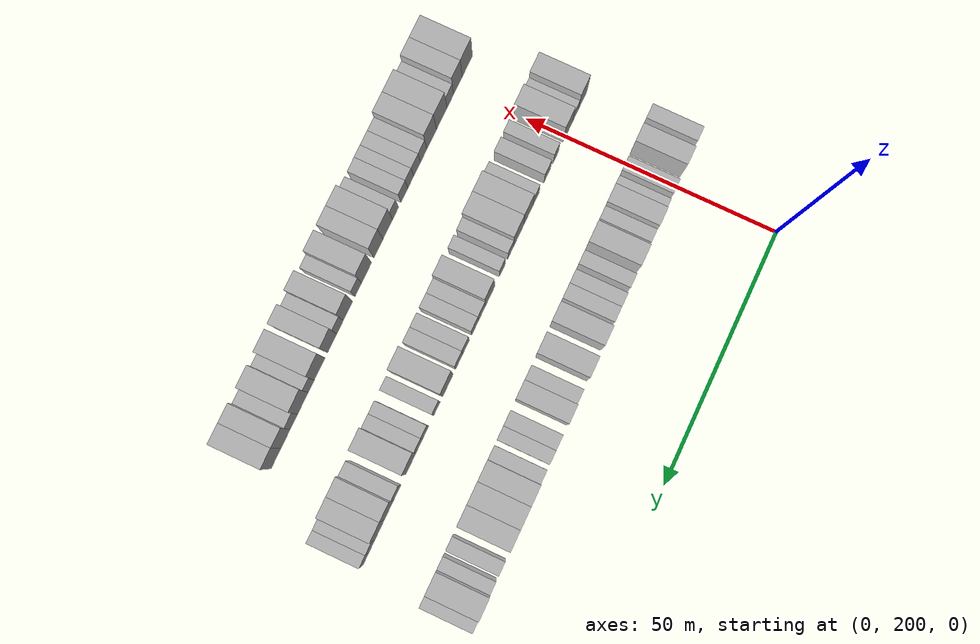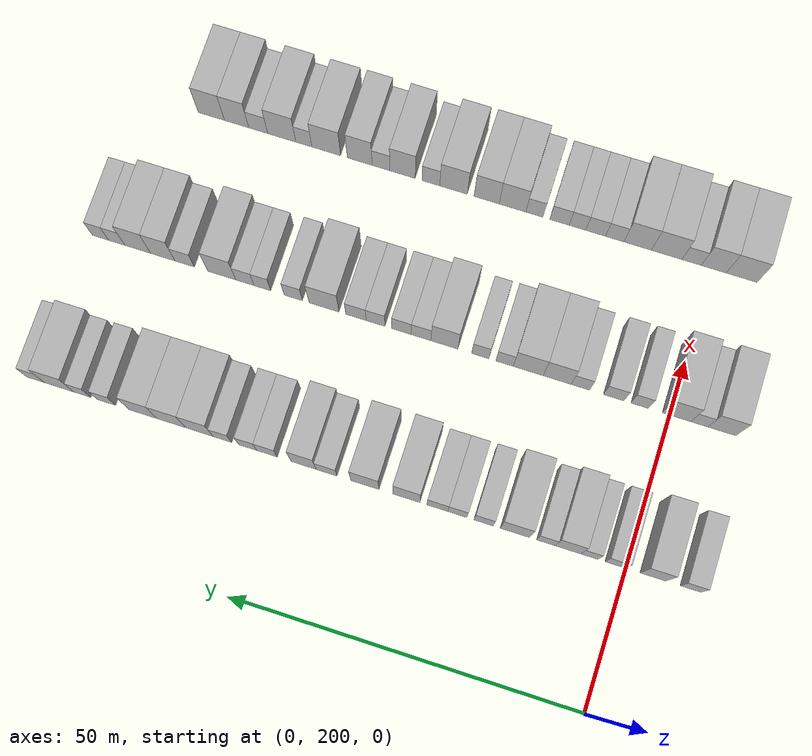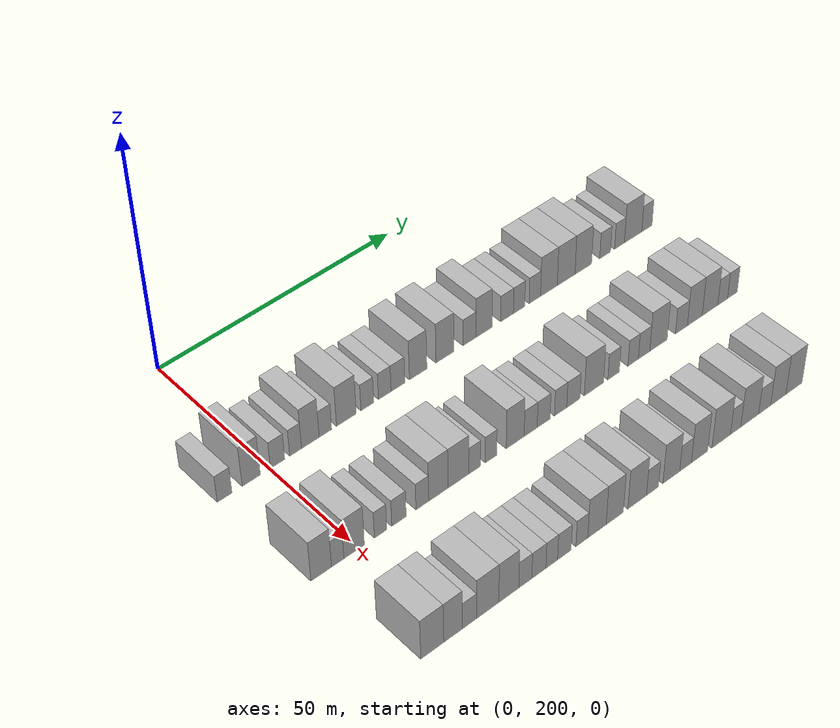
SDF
<sdf version="1.6">
 <world name="default">
  <model name="building_149">
   <static>1</static>
   <pose>25.0000 191.0385 0 0.000000 0.000000 0.000000</pose>
   <link name="link">
    <pose>0 0 3.00 0 0 0</pose>
    <collision name="collision"><geometry><box><size>10.0000 2.8879 6.0000</size></box></geometry></collision>
    <visual name="visual">
     <cast_shadows>0</cast_shadows>
     <geometry><box><size>10.0000 2.8879 6.0000</size></box></geometry>
     <material>
      <script>
       <uri>model://HANNAS_wall/materials/scripts</uri>
       <uri>model://HANNAS_wall/materials/textures</uri>
       <name>vrc/HANNAS_wall</name>
      </script>
     </material>
    </visual>
   </link>
  </model>
  <model name="building_150">
   <static>1</static>
   <pose>25.0000 196.2888 0 0.000000 0.000000 0.000000</pose>
   <link name="link">
    <pose>0 0 4.50 0 0 0</pose>
    <collision name="collision"><geometry><box><size>10.0000 3.6127 9.0000</size></box></geometry></collision>
    <visual name="visual">
     <cast_shadows>0</cast_shadows>
     <geometry><box><size>10.0000 3.6127 9.0000</size></box></geometry>
     <material>
      <script>
       <uri>model://HANNAS_wall/materials/scripts</uri>
       <uri>model://HANNAS_wall/materials/textures</uri>
       <name>vrc/HANNAS_wall</name>
      </script>
     </material>
    </visual>
   </link>
  </model>
  <model name="building_151">
   <static>1</static>
   <pose>25.0000 201.5452 0 0.000000 0.000000 0.000000</pose>
   <link name="link">
    <pose>0 0 3.00 0 0 0</pose>
    <collision name="collision"><geometry><box><size>10.0000 2.9001 6.0000</size></box></geometry></collision>
    <visual name="visual">
     <cast_shadows>0</cast_shadows>
     <geometry><box><size>10.0000 2.9001 6.0000</size></box></geometry>
     <material>
      <script>
       <uri>model://HANNAS_wall/materials/scripts</uri>
       <uri>model://HANNAS_wall/materials/textures</uri>
       <name>vrc/HANNAS_wall</name>
      </script>
     </material>
    </visual>
   </link>
  </model>
  <model name="building_152">
   <static>1</static>
   <pose>25.0000 205.2022 0 0.000000 0.000000 0.000000</pose>
   <link name="link">
    <pose>0 0 3.00 0 0 0</pose>
    <collision name="collision"><geometry><box><size>10.0000 2.4138 6.0000</size></box></geometry></collision>
    <visual name="visual">
     <cast_shadows>0</cast_shadows>
     <geometry><box><size>10.0000 2.4138 6.0000</size></box></geometry>
     <material>
      <script>
       <uri>model://HANNAS_wall/materials/scripts</uri>
       <uri>model://HANNAS_wall/materials/textures</uri>
       <name>vrc/HANNAS_wall</name>
      </script>
     </material>
    </visual>
   </link>
  </model>
  <model name="building_153">
   <static>1</static>
   <pose>25.0000 208.2257 0 0.000000 0.000000 0.000000</pose>
   <link name="link">
    <pose>0 0 4.50 0 0 0</pose>
    <collision name="collision"><geometry><box><size>10.0000 3.6332 9.0000</size></box></geometry></collision>
    <visual name="visual">
     <cast_shadows>0</cast_shadows>
     <geometry><box><size>10.0000 3.6332 9.0000</size></box></geometry>
     <material>
      <script>
       <uri>model://HANNAS_wall/materials/scripts</uri>
       <uri>model://HANNAS_wall/materials/textures</uri>
       <name>vrc/HANNAS_wall</name>
      </script>
     </material>
    </visual>
   </link>
  </model>
  <model name="building_154">
   <static>1</static>
   <pose>25.0000 211.3368 0 0.000000 0.000000 0.000000</pose>
   <link name="link">
    <pose>0 0 3.00 0 0 0</pose>
    <collision name="collision"><geometry><box><size>10.0000 2.5889 6.0000</size></box></geometry></collision>
    <visual name="visual">
     <cast_shadows>0</cast_shadows>
     <geometry><box><size>10.0000 2.5889 6.0000</size></box></geometry>
     <material>
      <script>
       <uri>model://HANNAS_wall/materials/scripts</uri>
       <uri>model://HANNAS_wall/materials/textures</uri>
       <name>vrc/HANNAS_wall</name>
      </script>
     </material>
    </visual>
   </link>
  </model>
  <model name="building_155">
   <static>1</static>
   <pose>25.0000 215.7041 0 0.000000 0.000000 0.000000</pose>
   <link name="link">
    <pose>0 0 4.50 0 0 0</pose>
    <collision name="collision"><geometry><box><size>10.0000 4.1457 9.0000</size></box></geometry></collision>
    <visual name="visual">
     <cast_shadows>0</cast_shadows>
     <geometry><box><size>10.0000 4.1457 9.0000</size></box></geometry>
     <material>
      <script>
       <uri>model://HANNAS_wall/materials/scripts</uri>
       <uri>model://HANNAS_wall/materials/textures</uri>
       <name>vrc/HANNAS_wall</name>
      </script>
     </material>
    </visual>
   </link>
  </model>
  <model name="building_156">
   <static>1</static>
   <pose>25.0000 220.1453 0 0.000000 0.000000 0.000000</pose>
   <link name="link">
    <pose>0 0 3.00 0 0 0</pose>
    <collision name="collision"><geometry><box><size>10.0000 2.7368 6.0000</size></box></geometry></collision>
    <visual name="visual">
     <cast_shadows>0</cast_shadows>
     <geometry><box><size>10.0000 2.7368 6.0000</size></box></geometry>
     <material>
      <script>
       <uri>model://HANNAS_wall/materials/scripts</uri>
       <uri>model://HANNAS_wall/materials/textures</uri>
       <name>vrc/HANNAS_wall</name>
      </script>
     </material>
    </visual>
   </link>
  </model>
  <model name="building_157">
   <static>1</static>
   <pose>25.0000 223.8660 0 0.000000 0.000000 0.000000</pose>
   <link name="link">
    <pose>0 0 3.00 0 0 0</pose>
    <collision name="collision"><geometry><box><size>10.0000 2.7046 6.0000</size></box></geometry></collision>
    <visual name="visual">
     <cast_shadows>0</cast_shadows>
     <geometry><box><size>10.0000 2.7046 6.0000</size></box></geometry>
     <material>
      <script>
       <uri>model://HANNAS_wall/materials/scripts</uri>
       <uri>model://HANNAS_wall/materials/textures</uri>
       <name>vrc/HANNAS_wall</name>
      </script>
     </material>
    </visual>
   </link>
  </model>
  <model name="building_158">
   <static>1</static>
   <pose>25.0000 226.7072 0 0.000000 0.000000 0.000000</pose>
   <link name="link">
    <pose>0 0 3.00 0 0 0</pose>
    <collision name="collision"><geometry><box><size>10.0000 2.9778 6.0000</size></box></geometry></collision>
    <visual name="visual">
     <cast_shadows>0</cast_shadows>
     <geometry><box><size>10.0000 2.9778 6.0000</size></box></geometry>
     <material>
      <script>
       <uri>model://HANNAS_wall/materials/scripts</uri>
       <uri>model://HANNAS_wall/materials/textures</uri>
       <name>vrc/HANNAS_wall</name>
      </script>
     </material>
    </visual>
   </link>
  </model>
  <model name="building_159">
   <static>1</static>
   <pose>25.0000 231.1160 0 0.000000 0.000000 0.000000</pose>
   <link name="link">
    <pose>0 0 4.50 0 0 0</pose>
    <collision name="collision"><geometry><box><size>10.0000 3.8397 9.0000</size></box></geometry></collision>
    <visual name="visual">
     <cast_shadows>0</cast_shadows>
     <geometry><box><size>10.0000 3.8397 9.0000</size></box></geometry>
     <material>
      <script>
       <uri>model://HANNAS_wall/materials/scripts</uri>
       <uri>model://HANNAS_wall/materials/textures</uri>
       <name>vrc/HANNAS_wall</name>
      </script>
     </material>
    </visual>
   </link>
  </model>
  <model name="building_160">
   <static>1</static>
   <pose>25.0000 237.0586 0 0.000000 0.000000 0.000000</pose>
   <link name="link">
    <pose>0 0 4.50 0 0 0</pose>
    <collision name="collision"><geometry><box><size>10.0000 4.0454 9.0000</size></box></geometry></collision>
    <visual name="visual">
     <cast_shadows>0</cast_shadows>
     <geometry><box><size>10.0000 4.0454 9.0000</size></box></geometry>
     <material>
      <script>
       <uri>model://HANNAS_wall/materials/scripts</uri>
       <uri>model://HANNAS_wall/materials/textures</uri>
       <name>vrc/HANNAS_wall</name>
      </script>
     </material>
    </visual>
   </link>
  </model>
  <model name="building_161">
   <static>1</static>
   <pose>25.0000 242.5773 0 0.000000 0.000000 0.000000</pose>
   <link name="link">
    <pose>0 0 3.00 0 0 0</pose>
    <collision name="collision"><geometry><box><size>10.0000 2.9920 6.0000</size></box></geometry></collision>
    <visual name="visual">
     <cast_shadows>0</cast_shadows>
     <geometry><box><size>10.0000 2.9920 6.0000</size></box></geometry>
     <material>
      <script>
       <uri>model://HANNAS_wall/materials/scripts</uri>
       <uri>model://HANNAS_wall/materials/textures</uri>
       <name>vrc/HANNAS_wall</name>
      </script>
     </material>
    </visual>
   </link>
  </model>
  <model name="building_162">
   <static>1</static>
   <pose>25.0000 245.8828 0 0.000000 0.000000 0.000000</pose>
   <link name="link">
    <pose>0 0 4.50 0 0 0</pose>
    <collision name="collision"><geometry><box><size>10.0000 3.6189 9.0000</size></box></geometry></collision>
    <visual name="visual">
     <cast_shadows>0</cast_shadows>
     <geometry><box><size>10.0000 3.6189 9.0000</size></box></geometry>
     <material>
      <script>
       <uri>model://HANNAS_wall/materials/scripts</uri>
       <uri>model://HANNAS_wall/materials/textures</uri>
       <name>vrc/HANNAS_wall</name>
      </script>
     </material>
    </visual>
   </link>
  </model>
  <model name="building_163">
   <static>1</static>
   <pose>25.0000 251.1605 0 0.000000 0.000000 0.000000</pose>
   <link name="link">
    <pose>0 0 3.00 0 0 0</pose>
    <collision name="collision"><geometry><box><size>10.0000 2.9365 6.0000</size></box></geometry></collision>
    <visual name="visual">
     <cast_shadows>0</cast_shadows>
     <geometry><box><size>10.0000 2.9365 6.0000</size></box></geometry>
     <material>
      <script>
       <uri>model://HANNAS_wall/materials/scripts</uri>
       <uri>model://HANNAS_wall/materials/textures</uri>
       <name>vrc/HANNAS_wall</name>
      </script>
     </material>
    </visual>
   </link>
  </model>
  <model name="building_164">
   <static>1</static>
   <pose>25.0000 253.9651 0 0.000000 0.000000 0.000000</pose>
   <link name="link">
    <pose>0 0 3.00 0 0 0</pose>
    <collision name="collision"><geometry><box><size>10.0000 2.6728 6.0000</size></box></geometry></collision>
    <visual name="visual">
     <cast_shadows>0</cast_shadows>
     <geometry><box><size>10.0000 2.6728 6.0000</size></box></geometry>
     <material>
      <script>
       <uri>model://HANNAS_wall/materials/scripts</uri>
       <uri>model://HANNAS_wall/materials/textures</uri>
       <name>vrc/HANNAS_wall</name>
      </script>
     </material>
    </visual>
   </link>
  </model>
  <model name="building_165">
   <static>1</static>
   <pose>25.0000 257.6490 0 0.000000 0.000000 0.000000</pose>
   <link name="link">
    <pose>0 0 3.00 0 0 0</pose>
    <collision name="collision"><geometry><box><size>10.0000 2.6950 6.0000</size></box></geometry></collision>
    <visual name="visual">
     <cast_shadows>0</cast_shadows>
     <geometry><box><size>10.0000 2.6950 6.0000</size></box></geometry>
     <material>
      <script>
       <uri>model://HANNAS_wall/materials/scripts</uri>
       <uri>model://HANNAS_wall/materials/textures</uri>
       <name>vrc/HANNAS_wall</name>
      </script>
     </material>
    </visual>
   </link>
  </model>
  <model name="building_166">
   <static>1</static>
   <pose>25.0000 260.9887 0 0.000000 0.000000 0.000000</pose>
   <link name="link">
    <pose>0 0 4.50 0 0 0</pose>
    <collision name="collision"><geometry><box><size>10.0000 3.9845 9.0000</size></box></geometry></collision>
    <visual name="visual">
     <cast_shadows>0</cast_shadows>
     <geometry><box><size>10.0000 3.9845 9.0000</size></box></geometry>
     <material>
      <script>
       <uri>model://HANNAS_wall/materials/scripts</uri>
       <uri>model://HANNAS_wall/materials/textures</uri>
       <name>vrc/HANNAS_wall</name>
      </script>
     </material>
    </visual>
   </link>
  </model>
  <model name="building_167">
   <static>1</static>
   <pose>25.0000 265.1142 0 0.000000 0.000000 0.000000</pose>
   <link name="link">
    <pose>0 0 4.50 0 0 0</pose>
    <collision name="collision"><geometry><box><size>10.0000 4.2666 9.0000</size></box></geometry></collision>
    <visual name="visual">
     <cast_shadows>0</cast_shadows>
     <geometry><box><size>10.0000 4.2666 9.0000</size></box></geometry>
     <material>
      <script>
       <uri>model://HANNAS_wall/materials/scripts</uri>
       <uri>model://HANNAS_wall/materials/textures</uri>
       <name>vrc/HANNAS_wall</name>
      </script>
     </material>
    </visual>
   </link>
  </model>
  <model name="building_168">
   <static>1</static>
   <pose>25.0000 269.2616 0 0.000000 0.000000 0.000000</pose>
   <link name="link">
    <pose>0 0 4.50 0 0 0</pose>
    <collision name="collision"><geometry><box><size>10.0000 4.0283 9.0000</size></box></geometry></collision>
    <visual name="visual">
     <cast_shadows>0</cast_shadows>
     <geometry><box><size>10.0000 4.0283 9.0000</size></box></geometry>
     <material>
      <script>
       <uri>model://HANNAS_wall/materials/scripts</uri>
       <uri>model://HANNAS_wall/materials/textures</uri>
       <name>vrc/HANNAS_wall</name>
      </script>
     </material>
    </visual>
   </link>
  </model>
  <model name="building_169">
   <static>1</static>
   <pose>25.0000 274.6057 0 0.000000 0.000000 0.000000</pose>
   <link name="link">
    <pose>0 0 3.00 0 0 0</pose>
    <collision name="collision"><geometry><box><size>10.0000 2.6597 6.0000</size></box></geometry></collision>
    <visual name="visual">
     <cast_shadows>0</cast_shadows>
     <geometry><box><size>10.0000 2.6597 6.0000</size></box></geometry>
     <material>
      <script>
       <uri>model://HANNAS_wall/materials/scripts</uri>
       <uri>model://HANNAS_wall/materials/textures</uri>
       <name>vrc/HANNAS_wall</name>
      </script>
     </material>
    </visual>
   </link>
  </model>
  <model name="building_170">
   <static>1</static>
   <pose>25.0000 278.1734 0 0.000000 0.000000 0.000000</pose>
   <link name="link">
    <pose>0 0 3.00 0 0 0</pose>
    <collision name="collision"><geometry><box><size>10.0000 2.4757 6.0000</size></box></geometry></collision>
    <visual name="visual">
     <cast_shadows>0</cast_shadows>
     <geometry><box><size>10.0000 2.4757 6.0000</size></box></geometry>
     <material>
      <script>
       <uri>model://HANNAS_wall/materials/scripts</uri>
       <uri>model://HANNAS_wall/materials/textures</uri>
       <name>vrc/HANNAS_wall</name>
      </script>
     </material>
    </visual>
   </link>
  </model>
  <model name="building_171">
   <static>1</static>
   <pose>25.0000 281.5835 0 0.000000 0.000000 0.000000</pose>
   <link name="link">
    <pose>0 0 4.50 0 0 0</pose>
    <collision name="collision"><geometry><box><size>10.0000 4.3447 9.0000</size></box></geometry></collision>
    <visual name="visual">
     <cast_shadows>0</cast_shadows>
     <geometry><box><size>10.0000 4.3447 9.0000</size></box></geometry>
     <material>
      <script>
       <uri>model://HANNAS_wall/materials/scripts</uri>
       <uri>model://HANNAS_wall/materials/textures</uri>
       <name>vrc/HANNAS_wall</name>
      </script>
     </material>
    </visual>
   </link>
  </model>
  <model name="building_172">
   <static>1</static>
   <pose>25.0000 285.0593 0 0.000000 0.000000 0.000000</pose>
   <link name="link">
    <pose>0 0 3.00 0 0 0</pose>
    <collision name="collision"><geometry><box><size>10.0000 2.6069 6.0000</size></box></geometry></collision>
    <visual name="visual">
     <cast_shadows>0</cast_shadows>
     <geometry><box><size>10.0000 2.6069 6.0000</size></box></geometry>
     <material>
      <script>
       <uri>model://HANNAS_wall/materials/scripts</uri>
       <uri>model://HANNAS_wall/materials/textures</uri>
       <name>vrc/HANNAS_wall</name>
      </script>
     </material>
    </visual>
   </link>
  </model>
  <model name="building_338">
   <static>1</static>
   <pose>47.0000 192.6020 0 0.000000 0.000000 0.000000</pose>
   <link name="link">
    <pose>0 0 4.50 0 0 0</pose>
    <collision name="collision"><geometry><box><size>10.0000 4.0116 9.0000</size></box></geometry></collision>
    <visual name="visual">
     <cast_shadows>0</cast_shadows>
     <geometry><box><size>10.0000 4.0116 9.0000</size></box></geometry>
     <material>
      <script>
       <uri>model://HANNAS_wall/materials/scripts</uri>
       <uri>model://HANNAS_wall/materials/textures</uri>
       <name>vrc/HANNAS_wall</name>
      </script>
     </material>
    </visual>
   </link>
  </model>
  <model name="building_339">
   <static>1</static>
   <pose>47.0000 195.8190 0 0.000000 0.000000 0.000000</pose>
   <link name="link">
    <pose>0 0 3.00 0 0 0</pose>
    <collision name="collision"><geometry><box><size>10.0000 2.4226 6.0000</size></box></geometry></collision>
    <visual name="visual">
     <cast_shadows>0</cast_shadows>
     <geometry><box><size>10.0000 2.4226 6.0000</size></box></geometry>
     <material>
      <script>
       <uri>model://HANNAS_wall/materials/scripts</uri>
       <uri>model://HANNAS_wall/materials/textures</uri>
       <name>vrc/HANNAS_wall</name>
      </script>
     </material>
    </visual>
   </link>
  </model>
  <model name="building_340">
   <static>1</static>
   <pose>47.0000 199.0685 0 0.000000 0.000000 0.000000</pose>
   <link name="link">
    <pose>0 0 4.50 0 0 0</pose>
    <collision name="collision"><geometry><box><size>10.0000 4.0763 9.0000</size></box></geometry></collision>
    <visual name="visual">
     <cast_shadows>0</cast_shadows>
     <geometry><box><size>10.0000 4.0763 9.0000</size></box></geometry>
     <material>
      <script>
       <uri>model://HANNAS_wall/materials/scripts</uri>
       <uri>model://HANNAS_wall/materials/textures</uri>
       <name>vrc/HANNAS_wall</name>
      </script>
     </material>
    </visual>
   </link>
  </model>
  <model name="building_341">
   <static>1</static>
   <pose>47.0000 204.3503 0 0.000000 0.000000 0.000000</pose>
   <link name="link">
    <pose>0 0 3.00 0 0 0</pose>
    <collision name="collision"><geometry><box><size>10.0000 2.4873 6.0000</size></box></geometry></collision>
    <visual name="visual">
     <cast_shadows>0</cast_shadows>
     <geometry><box><size>10.0000 2.4873 6.0000</size></box></geometry>
     <material>
      <script>
       <uri>model://HANNAS_wall/materials/scripts</uri>
       <uri>model://HANNAS_wall/materials/textures</uri>
       <name>vrc/HANNAS_wall</name>
      </script>
     </material>
    </visual>
   </link>
  </model>
  <model name="building_342">
   <static>1</static>
   <pose>47.0000 208.0722 0 0.000000 0.000000 0.000000</pose>
   <link name="link">
    <pose>0 0 3.00 0 0 0</pose>
    <collision name="collision"><geometry><box><size>10.0000 2.9567 6.0000</size></box></geometry></collision>
    <visual name="visual">
     <cast_shadows>0</cast_shadows>
     <geometry><box><size>10.0000 2.9567 6.0000</size></box></geometry>
     <material>
      <script>
       <uri>model://HANNAS_wall/materials/scripts</uri>
       <uri>model://HANNAS_wall/materials/textures</uri>
       <name>vrc/HANNAS_wall</name>
      </script>
     </material>
    </visual>
   </link>
  </model>
  <model name="building_343">
   <static>1</static>
   <pose>47.0000 212.8743 0 0.000000 0.000000 0.000000</pose>
   <link name="link">
    <pose>0 0 3.00 0 0 0</pose>
    <collision name="collision"><geometry><box><size>10.0000 2.6474 6.0000</size></box></geometry></collision>
    <visual name="visual">
     <cast_shadows>0</cast_shadows>
     <geometry><box><size>10.0000 2.6474 6.0000</size></box></geometry>
     <material>
      <script>
       <uri>model://HANNAS_wall/materials/scripts</uri>
       <uri>model://HANNAS_wall/materials/textures</uri>
       <name>vrc/HANNAS_wall</name>
      </script>
     </material>
    </visual>
   </link>
  </model>
  <model name="building_344">
   <static>1</static>
   <pose>47.0000 216.2233 0 0.000000 0.000000 0.000000</pose>
   <link name="link">
    <pose>0 0 4.50 0 0 0</pose>
    <collision name="collision"><geometry><box><size>10.0000 4.0506 9.0000</size></box></geometry></collision>
    <visual name="visual">
     <cast_shadows>0</cast_shadows>
     <geometry><box><size>10.0000 4.0506 9.0000</size></box></geometry>
     <material>
      <script>
       <uri>model://HANNAS_wall/materials/scripts</uri>
       <uri>model://HANNAS_wall/materials/textures</uri>
       <name>vrc/HANNAS_wall</name>
      </script>
     </material>
    </visual>
   </link>
  </model>
  <model name="building_345">
   <static>1</static>
   <pose>47.0000 220.4274 0 0.000000 0.000000 0.000000</pose>
   <link name="link">
    <pose>0 0 4.50 0 0 0</pose>
    <collision name="collision"><geometry><box><size>10.0000 4.3576 9.0000</size></box></geometry></collision>
    <visual name="visual">
     <cast_shadows>0</cast_shadows>
     <geometry><box><size>10.0000 4.3576 9.0000</size></box></geometry>
     <material>
      <script>
       <uri>model://HANNAS_wall/materials/scripts</uri>
       <uri>model://HANNAS_wall/materials/textures</uri>
       <name>vrc/HANNAS_wall</name>
      </script>
     </material>
    </visual>
   </link>
  </model>
  <model name="building_346">
   <static>1</static>
   <pose>47.0000 223.8663 0 0.000000 0.000000 0.000000</pose>
   <link name="link">
    <pose>0 0 3.00 0 0 0</pose>
    <collision name="collision"><geometry><box><size>10.0000 2.5201 6.0000</size></box></geometry></collision>
    <visual name="visual">
     <cast_shadows>0</cast_shadows>
     <geometry><box><size>10.0000 2.5201 6.0000</size></box></geometry>
     <material>
      <script>
       <uri>model://HANNAS_wall/materials/scripts</uri>
       <uri>model://HANNAS_wall/materials/textures</uri>
       <name>vrc/HANNAS_wall</name>
      </script>
     </material>
    </visual>
   </link>
  </model>
  <model name="building_347">
   <static>1</static>
   <pose>47.0000 227.3817 0 0.000000 0.000000 0.000000</pose>
   <link name="link">
    <pose>0 0 3.00 0 0 0</pose>
    <collision name="collision"><geometry><box><size>10.0000 2.5106 6.0000</size></box></geometry></collision>
    <visual name="visual">
     <cast_shadows>0</cast_shadows>
     <geometry><box><size>10.0000 2.5106 6.0000</size></box></geometry>
     <material>
      <script>
       <uri>model://HANNAS_wall/materials/scripts</uri>
       <uri>model://HANNAS_wall/materials/textures</uri>
       <name>vrc/HANNAS_wall</name>
      </script>
     </material>
    </visual>
   </link>
  </model>
  <model name="building_348">
   <static>1</static>
   <pose>47.0000 232.6057 0 0.000000 0.000000 0.000000</pose>
   <link name="link">
    <pose>0 0 4.50 0 0 0</pose>
    <collision name="collision"><geometry><box><size>10.0000 3.9375 9.0000</size></box></geometry></collision>
    <visual name="visual">
     <cast_shadows>0</cast_shadows>
     <geometry><box><size>10.0000 3.9375 9.0000</size></box></geometry>
     <material>
      <script>
       <uri>model://HANNAS_wall/materials/scripts</uri>
       <uri>model://HANNAS_wall/materials/textures</uri>
       <name>vrc/HANNAS_wall</name>
      </script>
     </material>
    </visual>
   </link>
  </model>
  <model name="building_349">
   <static>1</static>
   <pose>47.0000 236.0140 0 0.000000 0.000000 0.000000</pose>
   <link name="link">
    <pose>0 0 3.00 0 0 0</pose>
    <collision name="collision"><geometry><box><size>10.0000 2.8791 6.0000</size></box></geometry></collision>
    <visual name="visual">
     <cast_shadows>0</cast_shadows>
     <geometry><box><size>10.0000 2.8791 6.0000</size></box></geometry>
     <material>
      <script>
       <uri>model://HANNAS_wall/materials/scripts</uri>
       <uri>model://HANNAS_wall/materials/textures</uri>
       <name>vrc/HANNAS_wall</name>
      </script>
     </material>
    </visual>
   </link>
  </model>
  <model name="building_350">
   <static>1</static>
   <pose>47.0000 238.8788 0 0.000000 0.000000 0.000000</pose>
   <link name="link">
    <pose>0 0 3.00 0 0 0</pose>
    <collision name="collision"><geometry><box><size>10.0000 2.8505 6.0000</size></box></geometry></collision>
    <visual name="visual">
     <cast_shadows>0</cast_shadows>
     <geometry><box><size>10.0000 2.8505 6.0000</size></box></geometry>
     <material>
      <script>
       <uri>model://HANNAS_wall/materials/scripts</uri>
       <uri>model://HANNAS_wall/materials/textures</uri>
       <name>vrc/HANNAS_wall</name>
      </script>
     </material>
    </visual>
   </link>
  </model>
  <model name="building_351">
   <static>1</static>
   <pose>47.0000 242.6875 0 0.000000 0.000000 0.000000</pose>
   <link name="link">
    <pose>0 0 3.00 0 0 0</pose>
    <collision name="collision"><geometry><box><size>10.0000 2.7669 6.0000</size></box></geometry></collision>
    <visual name="visual">
     <cast_shadows>0</cast_shadows>
     <geometry><box><size>10.0000 2.7669 6.0000</size></box></geometry>
     <material>
      <script>
       <uri>model://HANNAS_wall/materials/scripts</uri>
       <uri>model://HANNAS_wall/materials/textures</uri>
       <name>vrc/HANNAS_wall</name>
      </script>
     </material>
    </visual>
   </link>
  </model>
  <model name="building_352">
   <static>1</static>
   <pose>47.0000 245.5668 0 0.000000 0.000000 0.000000</pose>
   <link name="link">
    <pose>0 0 3.00 0 0 0</pose>
    <collision name="collision"><geometry><box><size>10.0000 2.9917 6.0000</size></box></geometry></collision>
    <visual name="visual">
     <cast_shadows>0</cast_shadows>
     <geometry><box><size>10.0000 2.9917 6.0000</size></box></geometry>
     <material>
      <script>
       <uri>model://HANNAS_wall/materials/scripts</uri>
       <uri>model://HANNAS_wall/materials/textures</uri>
       <name>vrc/HANNAS_wall</name>
      </script>
     </material>
    </visual>
   </link>
  </model>
  <model name="building_353">
   <static>1</static>
   <pose>47.0000 250.2718 0 0.000000 0.000000 0.000000</pose>
   <link name="link">
    <pose>0 0 4.50 0 0 0</pose>
    <collision name="collision"><geometry><box><size>10.0000 4.4184 9.0000</size></box></geometry></collision>
    <visual name="visual">
     <cast_shadows>0</cast_shadows>
     <geometry><box><size>10.0000 4.4184 9.0000</size></box></geometry>
     <material>
      <script>
       <uri>model://HANNAS_wall/materials/scripts</uri>
       <uri>model://HANNAS_wall/materials/textures</uri>
       <name>vrc/HANNAS_wall</name>
      </script>
     </material>
    </visual>
   </link>
  </model>
  <model name="building_354">
   <static>1</static>
   <pose>47.0000 254.8256 0 0.000000 0.000000 0.000000</pose>
   <link name="link">
    <pose>0 0 3.00 0 0 0</pose>
    <collision name="collision"><geometry><box><size>10.0000 2.6891 6.0000</size></box></geometry></collision>
    <visual name="visual">
     <cast_shadows>0</cast_shadows>
     <geometry><box><size>10.0000 2.6891 6.0000</size></box></geometry>
     <material>
      <script>
       <uri>model://HANNAS_wall/materials/scripts</uri>
       <uri>model://HANNAS_wall/materials/textures</uri>
       <name>vrc/HANNAS_wall</name>
      </script>
     </material>
    </visual>
   </link>
  </model>
  <model name="building_355">
   <static>1</static>
   <pose>47.0000 259.4081 0 0.000000 0.000000 0.000000</pose>
   <link name="link">
    <pose>0 0 3.00 0 0 0</pose>
    <collision name="collision"><geometry><box><size>10.0000 2.4759 6.0000</size></box></geometry></collision>
    <visual name="visual">
     <cast_shadows>0</cast_shadows>
     <geometry><box><size>10.0000 2.4759 6.0000</size></box></geometry>
     <material>
      <script>
       <uri>model://HANNAS_wall/materials/scripts</uri>
       <uri>model://HANNAS_wall/materials/textures</uri>
       <name>vrc/HANNAS_wall</name>
      </script>
     </material>
    </visual>
   </link>
  </model>
  <model name="building_356">
   <static>1</static>
   <pose>47.0000 262.0029 0 0.000000 0.000000 0.000000</pose>
   <link name="link">
    <pose>0 0 3.00 0 0 0</pose>
    <collision name="collision"><geometry><box><size>10.0000 2.7137 6.0000</size></box></geometry></collision>
    <visual name="visual">
     <cast_shadows>0</cast_shadows>
     <geometry><box><size>10.0000 2.7137 6.0000</size></box></geometry>
     <material>
      <script>
       <uri>model://HANNAS_wall/materials/scripts</uri>
       <uri>model://HANNAS_wall/materials/textures</uri>
       <name>vrc/HANNAS_wall</name>
      </script>
     </material>
    </visual>
   </link>
  </model>
  <model name="building_357">
   <static>1</static>
   <pose>47.0000 265.4450 0 0.000000 0.000000 0.000000</pose>
   <link name="link">
    <pose>0 0 4.50 0 0 0</pose>
    <collision name="collision"><geometry><box><size>10.0000 4.1705 9.0000</size></box></geometry></collision>
    <visual name="visual">
     <cast_shadows>0</cast_shadows>
     <geometry><box><size>10.0000 4.1705 9.0000</size></box></geometry>
     <material>
      <script>
       <uri>model://HANNAS_wall/materials/scripts</uri>
       <uri>model://HANNAS_wall/materials/textures</uri>
       <name>vrc/HANNAS_wall</name>
      </script>
     </material>
    </visual>
   </link>
  </model>
  <model name="building_358">
   <static>1</static>
   <pose>47.0000 270.9823 0 0.000000 0.000000 0.000000</pose>
   <link name="link">
    <pose>0 0 3.00 0 0 0</pose>
    <collision name="collision"><geometry><box><size>10.0000 2.9042 6.0000</size></box></geometry></collision>
    <visual name="visual">
     <cast_shadows>0</cast_shadows>
     <geometry><box><size>10.0000 2.9042 6.0000</size></box></geometry>
     <material>
      <script>
       <uri>model://HANNAS_wall/materials/scripts</uri>
       <uri>model://HANNAS_wall/materials/textures</uri>
       <name>vrc/HANNAS_wall</name>
      </script>
     </material>
    </visual>
   </link>
  </model>
  <model name="building_359">
   <static>1</static>
   <pose>47.0000 274.2659 0 0.000000 0.000000 0.000000</pose>
   <link name="link">
    <pose>0 0 4.50 0 0 0</pose>
    <collision name="collision"><geometry><box><size>10.0000 3.6629 9.0000</size></box></geometry></collision>
    <visual name="visual">
     <cast_shadows>0</cast_shadows>
     <geometry><box><size>10.0000 3.6629 9.0000</size></box></geometry>
     <material>
      <script>
       <uri>model://HANNAS_wall/materials/scripts</uri>
       <uri>model://HANNAS_wall/materials/textures</uri>
       <name>vrc/HANNAS_wall</name>
      </script>
     </material>
    </visual>
   </link>
  </model>
  <model name="building_360">
   <static>1</static>
   <pose>47.0000 278.0301 0 0.000000 0.000000 0.000000</pose>
   <link name="link">
    <pose>0 0 4.50 0 0 0</pose>
    <collision name="collision"><geometry><box><size>10.0000 3.8656 9.0000</size></box></geometry></collision>
    <visual name="visual">
     <cast_shadows>0</cast_shadows>
     <geometry><box><size>10.0000 3.8656 9.0000</size></box></geometry>
     <material>
      <script>
       <uri>model://HANNAS_wall/materials/scripts</uri>
       <uri>model://HANNAS_wall/materials/textures</uri>
       <name>vrc/HANNAS_wall</name>
      </script>
     </material>
    </visual>
   </link>
  </model>
  <model name="building_361">
   <static>1</static>
   <pose>47.0000 281.1861 0 0.000000 0.000000 0.000000</pose>
   <link name="link">
    <pose>0 0 3.00 0 0 0</pose>
    <collision name="collision"><geometry><box><size>10.0000 2.4464 6.0000</size></box></geometry></collision>
    <visual name="visual">
     <cast_shadows>0</cast_shadows>
     <geometry><box><size>10.0000 2.4464 6.0000</size></box></geometry>
     <material>
      <script>
       <uri>model://HANNAS_wall/materials/scripts</uri>
       <uri>model://HANNAS_wall/materials/textures</uri>
       <name>vrc/HANNAS_wall</name>
      </script>
     </material>
    </visual>
   </link>
  </model>
  <model name="building_362">
   <static>1</static>
   <pose>47.0000 283.6289 0 0.000000 0.000000 0.000000</pose>
   <link name="link">
    <pose>0 0 3.00 0 0 0</pose>
    <collision name="collision"><geometry><box><size>10.0000 2.4391 6.0000</size></box></geometry></collision>
    <visual name="visual">
     <cast_shadows>0</cast_shadows>
     <geometry><box><size>10.0000 2.4391 6.0000</size></box></geometry>
     <material>
      <script>
       <uri>model://HANNAS_wall/materials/scripts</uri>
       <uri>model://HANNAS_wall/materials/textures</uri>
       <name>vrc/HANNAS_wall</name>
      </script>
     </material>
    </visual>
   </link>
  </model>
  <model name="building_533">
   <static>1</static>
   <pose>69.0000 195.6226 0 0.000000 0.000000 0.000000</pose>
   <link name="link">
    <pose>0 0 4.50 0 0 0</pose>
    <collision name="collision"><geometry><box><size>10.0000 4.4879 9.0000</size></box></geometry></collision>
    <visual name="visual">
     <cast_shadows>0</cast_shadows>
     <geometry><box><size>10.0000 4.4879 9.0000</size></box></geometry>
     <material>
      <script>
       <uri>model://HANNAS_wall/materials/scripts</uri>
       <uri>model://HANNAS_wall/materials/textures</uri>
       <name>vrc/HANNAS_wall</name>
      </script>
     </material>
    </visual>
   </link>
  </model>
  <model name="building_534">
   <static>1</static>
   <pose>69.0000 199.6957 0 0.000000 0.000000 0.000000</pose>
   <link name="link">
    <pose>0 0 4.50 0 0 0</pose>
    <collision name="collision"><geometry><box><size>10.0000 3.6583 9.0000</size></box></geometry></collision>
    <visual name="visual">
     <cast_shadows>0</cast_shadows>
     <geometry><box><size>10.0000 3.6583 9.0000</size></box></geometry>
     <material>
      <script>
       <uri>model://HANNAS_wall/materials/scripts</uri>
       <uri>model://HANNAS_wall/materials/textures</uri>
       <name>vrc/HANNAS_wall</name>
      </script>
     </material>
    </visual>
   </link>
  </model>
  <model name="building_535">
   <static>1</static>
   <pose>69.0000 202.9404 0 0.000000 0.000000 0.000000</pose>
   <link name="link">
    <pose>0 0 3.00 0 0 0</pose>
    <collision name="collision"><geometry><box><size>10.0000 2.8310 6.0000</size></box></geometry></collision>
    <visual name="visual">
     <cast_shadows>0</cast_shadows>
     <geometry><box><size>10.0000 2.8310 6.0000</size></box></geometry>
     <material>
      <script>
       <uri>model://HANNAS_wall/materials/scripts</uri>
       <uri>model://HANNAS_wall/materials/textures</uri>
       <name>vrc/HANNAS_wall</name>
      </script>
     </material>
    </visual>
   </link>
  </model>
  <model name="building_536">
   <static>1</static>
   <pose>69.0000 206.5994 0 0.000000 0.000000 0.000000</pose>
   <link name="link">
    <pose>0 0 4.50 0 0 0</pose>
    <collision name="collision"><geometry><box><size>10.0000 4.4870 9.0000</size></box></geometry></collision>
    <visual name="visual">
     <cast_shadows>0</cast_shadows>
     <geometry><box><size>10.0000 4.4870 9.0000</size></box></geometry>
     <material>
      <script>
       <uri>model://HANNAS_wall/materials/scripts</uri>
       <uri>model://HANNAS_wall/materials/textures</uri>
       <name>vrc/HANNAS_wall</name>
      </script>
     </material>
    </visual>
   </link>
  </model>
  <model name="building_537">
   <static>1</static>
   <pose>69.0000 210.8694 0 0.000000 0.000000 0.000000</pose>
   <link name="link">
    <pose>0 0 4.50 0 0 0</pose>
    <collision name="collision"><geometry><box><size>10.0000 4.0528 9.0000</size></box></geometry></collision>
    <visual name="visual">
     <cast_shadows>0</cast_shadows>
     <geometry><box><size>10.0000 4.0528 9.0000</size></box></geometry>
     <material>
      <script>
       <uri>model://HANNAS_wall/materials/scripts</uri>
       <uri>model://HANNAS_wall/materials/textures</uri>
       <name>vrc/HANNAS_wall</name>
      </script>
     </material>
    </visual>
   </link>
  </model>
  <model name="building_538">
   <static>1</static>
   <pose>69.0000 214.2477 0 0.000000 0.000000 0.000000</pose>
   <link name="link">
    <pose>0 0 3.00 0 0 0</pose>
    <collision name="collision"><geometry><box><size>10.0000 2.7038 6.0000</size></box></geometry></collision>
    <visual name="visual">
     <cast_shadows>0</cast_shadows>
     <geometry><box><size>10.0000 2.7038 6.0000</size></box></geometry>
     <material>
      <script>
       <uri>model://HANNAS_wall/materials/scripts</uri>
       <uri>model://HANNAS_wall/materials/textures</uri>
       <name>vrc/HANNAS_wall</name>
      </script>
     </material>
    </visual>
   </link>
  </model>
  <model name="building_539">
   <static>1</static>
   <pose>69.0000 217.0559 0 0.000000 0.000000 0.000000</pose>
   <link name="link">
    <pose>0 0 3.00 0 0 0</pose>
    <collision name="collision"><geometry><box><size>10.0000 2.9126 6.0000</size></box></geometry></collision>
    <visual name="visual">
     <cast_shadows>0</cast_shadows>
     <geometry><box><size>10.0000 2.9126 6.0000</size></box></geometry>
     <material>
      <script>
       <uri>model://HANNAS_wall/materials/scripts</uri>
       <uri>model://HANNAS_wall/materials/textures</uri>
       <name>vrc/HANNAS_wall</name>
      </script>
     </material>
    </visual>
   </link>
  </model>
  <model name="building_540">
   <static>1</static>
   <pose>69.0000 219.7346 0 0.000000 0.000000 0.000000</pose>
   <link name="link">
    <pose>0 0 3.00 0 0 0</pose>
    <collision name="collision"><geometry><box><size>10.0000 2.4448 6.0000</size></box></geometry></collision>
    <visual name="visual">
     <cast_shadows>0</cast_shadows>
     <geometry><box><size>10.0000 2.4448 6.0000</size></box></geometry>
     <material>
      <script>
       <uri>model://HANNAS_wall/materials/scripts</uri>
       <uri>model://HANNAS_wall/materials/textures</uri>
       <name>vrc/HANNAS_wall</name>
      </script>
     </material>
    </visual>
   </link>
  </model>
  <model name="building_541">
   <static>1</static>
   <pose>69.0000 222.3903 0 0.000000 0.000000 0.000000</pose>
   <link name="link">
    <pose>0 0 3.00 0 0 0</pose>
    <collision name="collision"><geometry><box><size>10.0000 2.8665 6.0000</size></box></geometry></collision>
    <visual name="visual">
     <cast_shadows>0</cast_shadows>
     <geometry><box><size>10.0000 2.8665 6.0000</size></box></geometry>
     <material>
      <script>
       <uri>model://HANNAS_wall/materials/scripts</uri>
       <uri>model://HANNAS_wall/materials/textures</uri>
       <name>vrc/HANNAS_wall</name>
      </script>
     </material>
    </visual>
   </link>
  </model>
  <model name="building_542">
   <static>1</static>
   <pose>69.0000 226.0919 0 0.000000 0.000000 0.000000</pose>
   <link name="link">
    <pose>0 0 3.00 0 0 0</pose>
    <collision name="collision"><geometry><box><size>10.0000 2.5369 6.0000</size></box></geometry></collision>
    <visual name="visual">
     <cast_shadows>0</cast_shadows>
     <geometry><box><size>10.0000 2.5369 6.0000</size></box></geometry>
     <material>
      <script>
       <uri>model://HANNAS_wall/materials/scripts</uri>
       <uri>model://HANNAS_wall/materials/textures</uri>
       <name>vrc/HANNAS_wall</name>
      </script>
     </material>
    </visual>
   </link>
  </model>
  <model name="building_543">
   <static>1</static>
   <pose>69.0000 229.3500 0 0.000000 0.000000 0.000000</pose>
   <link name="link">
    <pose>0 0 4.50 0 0 0</pose>
    <collision name="collision"><geometry><box><size>10.0000 3.9793 9.0000</size></box></geometry></collision>
    <visual name="visual">
     <cast_shadows>0</cast_shadows>
     <geometry><box><size>10.0000 3.9793 9.0000</size></box></geometry>
     <material>
      <script>
       <uri>model://HANNAS_wall/materials/scripts</uri>
       <uri>model://HANNAS_wall/materials/textures</uri>
       <name>vrc/HANNAS_wall</name>
      </script>
     </material>
    </visual>
   </link>
  </model>
  <model name="building_544">
   <static>1</static>
   <pose>69.0000 233.2101 0 0.000000 0.000000 0.000000</pose>
   <link name="link">
    <pose>0 0 4.50 0 0 0</pose>
    <collision name="collision"><geometry><box><size>10.0000 3.7408 9.0000</size></box></geometry></collision>
    <visual name="visual">
     <cast_shadows>0</cast_shadows>
     <geometry><box><size>10.0000 3.7408 9.0000</size></box></geometry>
     <material>
      <script>
       <uri>model://HANNAS_wall/materials/scripts</uri>
       <uri>model://HANNAS_wall/materials/textures</uri>
       <name>vrc/HANNAS_wall</name>
      </script>
     </material>
    </visual>
   </link>
  </model>
  <model name="building_545">
   <static>1</static>
   <pose>69.0000 238.1414 0 0.000000 0.000000 0.000000</pose>
   <link name="link">
    <pose>0 0 4.50 0 0 0</pose>
    <collision name="collision"><geometry><box><size>10.0000 4.1217 9.0000</size></box></geometry></collision>
    <visual name="visual">
     <cast_shadows>0</cast_shadows>
     <geometry><box><size>10.0000 4.1217 9.0000</size></box></geometry>
     <material>
      <script>
       <uri>model://HANNAS_wall/materials/scripts</uri>
       <uri>model://HANNAS_wall/materials/textures</uri>
       <name>vrc/HANNAS_wall</name>
      </script>
     </material>
    </visual>
   </link>
  </model>
  <model name="building_546">
   <static>1</static>
   <pose>69.0000 241.5357 0 0.000000 0.000000 0.000000</pose>
   <link name="link">
    <pose>0 0 3.00 0 0 0</pose>
    <collision name="collision"><geometry><box><size>10.0000 2.6669 6.0000</size></box></geometry></collision>
    <visual name="visual">
     <cast_shadows>0</cast_shadows>
     <geometry><box><size>10.0000 2.6669 6.0000</size></box></geometry>
     <material>
      <script>
       <uri>model://HANNAS_wall/materials/scripts</uri>
       <uri>model://HANNAS_wall/materials/textures</uri>
       <name>vrc/HANNAS_wall</name>
      </script>
     </material>
    </visual>
   </link>
  </model>
  <model name="building_547">
   <static>1</static>
   <pose>69.0000 245.7771 0 0.000000 0.000000 0.000000</pose>
   <link name="link">
    <pose>0 0 4.50 0 0 0</pose>
    <collision name="collision"><geometry><box><size>10.0000 3.8160 9.0000</size></box></geometry></collision>
    <visual name="visual">
     <cast_shadows>0</cast_shadows>
     <geometry><box><size>10.0000 3.8160 9.0000</size></box></geometry>
     <material>
      <script>
       <uri>model://HANNAS_wall/materials/scripts</uri>
       <uri>model://HANNAS_wall/materials/textures</uri>
       <name>vrc/HANNAS_wall</name>
      </script>
     </material>
    </visual>
   </link>
  </model>
  <model name="building_548">
   <static>1</static>
   <pose>69.0000 249.0193 0 0.000000 0.000000 0.000000</pose>
   <link name="link">
    <pose>0 0 3.00 0 0 0</pose>
    <collision name="collision"><geometry><box><size>10.0000 2.6683 6.0000</size></box></geometry></collision>
    <visual name="visual">
     <cast_shadows>0</cast_shadows>
     <geometry><box><size>10.0000 2.6683 6.0000</size></box></geometry>
     <material>
      <script>
       <uri>model://HANNAS_wall/materials/scripts</uri>
       <uri>model://HANNAS_wall/materials/textures</uri>
       <name>vrc/HANNAS_wall</name>
      </script>
     </material>
    </visual>
   </link>
  </model>
  <model name="building_549">
   <static>1</static>
   <pose>69.0000 252.2272 0 0.000000 0.000000 0.000000</pose>
   <link name="link">
    <pose>0 0 4.50 0 0 0</pose>
    <collision name="collision"><geometry><box><size>10.0000 3.7475 9.0000</size></box></geometry></collision>
    <visual name="visual">
     <cast_shadows>0</cast_shadows>
     <geometry><box><size>10.0000 3.7475 9.0000</size></box></geometry>
     <material>
      <script>
       <uri>model://HANNAS_wall/materials/scripts</uri>
       <uri>model://HANNAS_wall/materials/textures</uri>
       <name>vrc/HANNAS_wall</name>
      </script>
     </material>
    </visual>
   </link>
  </model>
  <model name="building_550">
   <static>1</static>
   <pose>69.0000 257.2768 0 0.000000 0.000000 0.000000</pose>
   <link name="link">
    <pose>0 0 4.50 0 0 0</pose>
    <collision name="collision"><geometry><box><size>10.0000 4.3518 9.0000</size></box></geometry></collision>
    <visual name="visual">
     <cast_shadows>0</cast_shadows>
     <geometry><box><size>10.0000 4.3518 9.0000</size></box></geometry>
     <material>
      <script>
       <uri>model://HANNAS_wall/materials/scripts</uri>
       <uri>model://HANNAS_wall/materials/textures</uri>
       <name>vrc/HANNAS_wall</name>
      </script>
     </material>
    </visual>
   </link>
  </model>
  <model name="building_551">
   <static>1</static>
   <pose>69.0000 260.6665 0 0.000000 0.000000 0.000000</pose>
   <link name="link">
    <pose>0 0 3.00 0 0 0</pose>
    <collision name="collision"><geometry><box><size>10.0000 2.4276 6.0000</size></box></geometry></collision>
    <visual name="visual">
     <cast_shadows>0</cast_shadows>
     <geometry><box><size>10.0000 2.4276 6.0000</size></box></geometry>
     <material>
      <script>
       <uri>model://HANNAS_wall/materials/scripts</uri>
       <uri>model://HANNAS_wall/materials/textures</uri>
       <name>vrc/HANNAS_wall</name>
      </script>
     </material>
    </visual>
   </link>
  </model>
  <model name="building_552">
   <static>1</static>
   <pose>69.0000 264.0124 0 0.000000 0.000000 0.000000</pose>
   <link name="link">
    <pose>0 0 4.50 0 0 0</pose>
    <collision name="collision"><geometry><box><size>10.0000 4.2641 9.0000</size></box></geometry></collision>
    <visual name="visual">
     <cast_shadows>0</cast_shadows>
     <geometry><box><size>10.0000 4.2641 9.0000</size></box></geometry>
     <material>
      <script>
       <uri>model://HANNAS_wall/materials/scripts</uri>
       <uri>model://HANNAS_wall/materials/textures</uri>
       <name>vrc/HANNAS_wall</name>
      </script>
     </material>
    </visual>
   </link>
  </model>
  <model name="building_553">
   <static>1</static>
   <pose>69.0000 267.5878 0 0.000000 0.000000 0.000000</pose>
   <link name="link">
    <pose>0 0 3.00 0 0 0</pose>
    <collision name="collision"><geometry><box><size>10.0000 2.8868 6.0000</size></box></geometry></collision>
    <visual name="visual">
     <cast_shadows>0</cast_shadows>
     <geometry><box><size>10.0000 2.8868 6.0000</size></box></geometry>
     <material>
      <script>
       <uri>model://HANNAS_wall/materials/scripts</uri>
       <uri>model://HANNAS_wall/materials/textures</uri>
       <name>vrc/HANNAS_wall</name>
      </script>
     </material>
    </visual>
   </link>
  </model>
  <model name="building_554">
   <static>1</static>
   <pose>69.0000 270.8839 0 0.000000 0.000000 0.000000</pose>
   <link name="link">
    <pose>0 0 4.50 0 0 0</pose>
    <collision name="collision"><geometry><box><size>10.0000 3.7053 9.0000</size></box></geometry></collision>
    <visual name="visual">
     <cast_shadows>0</cast_shadows>
     <geometry><box><size>10.0000 3.7053 9.0000</size></box></geometry>
     <material>
      <script>
       <uri>model://HANNAS_wall/materials/scripts</uri>
       <uri>model://HANNAS_wall/materials/textures</uri>
       <name>vrc/HANNAS_wall</name>
      </script>
     </material>
    </visual>
   </link>
  </model>
  <model name="building_555">
   <static>1</static>
   <pose>69.0000 274.7344 0 0.000000 0.000000 0.000000</pose>
   <link name="link">
    <pose>0 0 4.50 0 0 0</pose>
    <collision name="collision"><geometry><box><size>10.0000 3.9957 9.0000</size></box></geometry></collision>
    <visual name="visual">
     <cast_shadows>0</cast_shadows>
     <geometry><box><size>10.0000 3.9957 9.0000</size></box></geometry>
     <material>
      <script>
       <uri>model://HANNAS_wall/materials/scripts</uri>
       <uri>model://HANNAS_wall/materials/textures</uri>
       <name>vrc/HANNAS_wall</name>
      </script>
     </material>
    </visual>
   </link>
  </model>
 </world>
</sdf>
